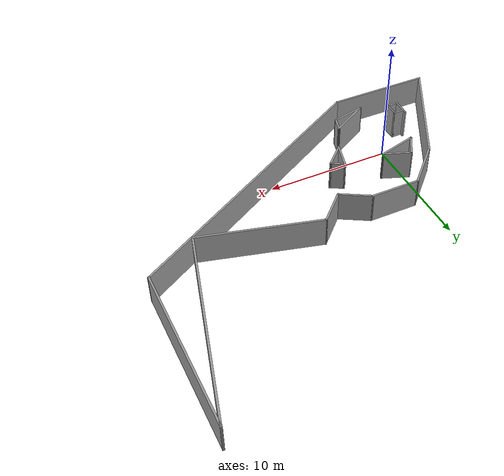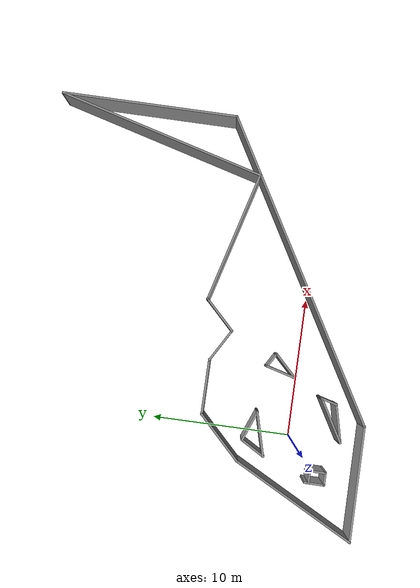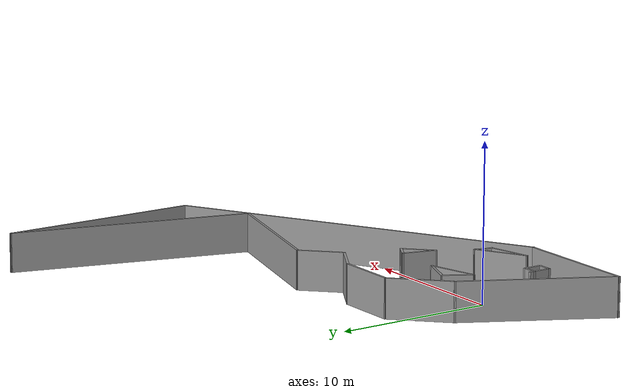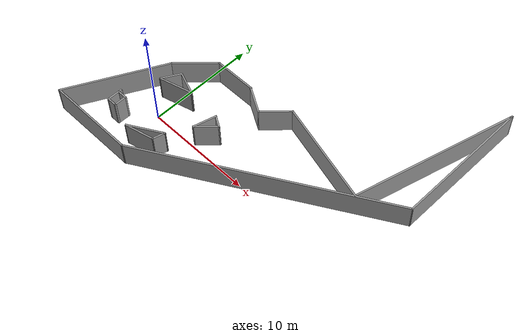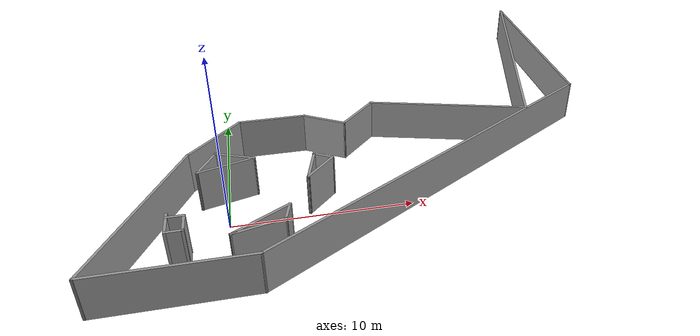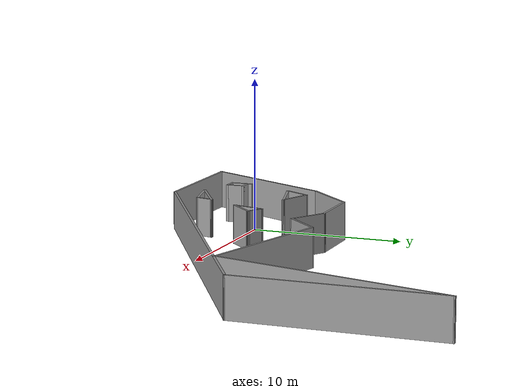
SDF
<?xml version='1.0'?>
<sdf version='1.7'>
  <model name='wall_world'>
    <pose>7.88795 7.2472 0 0 -0 0</pose>
    <link name='Wall_0'>
      <collision name='Wall_0_Collision'>
        <geometry>
          <box>
            <size>8.25 0.15 2.5</size>
          </box>
        </geometry>
        <pose>0 0 1.25 0 -0 0</pose>
      </collision>
      <visual name='Wall_0_Visual'>
        <pose>0 0 1.25 0 -0 0</pose>
        <geometry>
          <box>
            <size>8.25 0.15 2.5</size>
          </box>
        </geometry>
        <material>
          <script>
            <uri>file://media/materials/scripts/gazebo.material</uri>
            <name>Gazebo/Grey</name>
          </script>
          <ambient>1 1 1 1</ambient>
        </material>
        <meta>
          <layer>0</layer>
        </meta>
      </visual>
      <pose>-10.328 -12.2572 0 0 -0 0</pose>
    </link>
    <link name='Wall_1'>
      <collision name='Wall_1_Collision'>
        <geometry>
          <box>
            <size>24 0.15 2.5</size>
          </box>
        </geometry>
        <pose>0 0 1.25 0 -0 0</pose>
      </collision>
      <visual name='Wall_1_Visual'>
        <pose>0 0 1.25 0 -0 0</pose>
        <geometry>
          <box>
            <size>24 0.15 2.5</size>
          </box>
        </geometry>
        <material>
          <script>
            <uri>file://media/materials/scripts/gazebo.material</uri>
            <name>Gazebo/Grey</name>
          </script>
          <ambient>1 1 1 1</ambient>
        </material>
        <meta>
          <layer>0</layer>
        </meta>
      </visual>
      <pose>4.0494 -6.2947 0 0 -0 0.523599</pose>
    </link>
    <link name='Wall_11'>
      <collision name='Wall_11_Collision'>
        <geometry>
          <box>
            <size>2.25 0.15 2.5</size>
          </box>
        </geometry>
        <pose>0 0 1.25 0 -0 0</pose>
      </collision>
      <visual name='Wall_11_Visual'>
        <pose>0 0 1.25 0 -0 0</pose>
        <geometry>
          <box>
            <size>2.25 0.15 2.5</size>
          </box>
        </geometry>
        <material>
          <script>
            <uri>file://media/materials/scripts/gazebo.material</uri>
            <name>Gazebo/Grey</name>
          </script>
          <ambient>1 1 1 1</ambient>
        </material>
        <meta>
          <layer>0</layer>
        </meta>
      </visual>
      <pose>-2.81296 -6.19714 0 0 -0 -2.35619</pose>
    </link>
    <link name='Wall_12'>
      <collision name='Wall_12_Collision'>
        <geometry>
          <box>
            <size>2.25 0.15 2.5</size>
          </box>
        </geometry>
        <pose>0 0 1.25 0 -0 0</pose>
      </collision>
      <visual name='Wall_12_Visual'>
        <pose>0 0 1.25 0 -0 0</pose>
        <geometry>
          <box>
            <size>2.25 0.15 2.5</size>
          </box>
        </geometry>
        <material>
          <script>
            <uri>file://media/materials/scripts/gazebo.material</uri>
            <name>Gazebo/Grey</name>
          </script>
          <ambient>1 1 1 1</ambient>
        </material>
        <meta>
          <layer>0</layer>
        </meta>
      </visual>
      <pose>-3.28366 -5.92538 0 0 -0 1.309</pose>
    </link>
    <link name='Wall_13'>
      <collision name='Wall_13_Collision'>
        <geometry>
          <box>
            <size>1.23704 0.15 2.5</size>
          </box>
        </geometry>
        <pose>0 0 1.25 0 -0 0</pose>
      </collision>
      <visual name='Wall_13_Visual'>
        <pose>0 0 1.25 0 -0 0</pose>
        <geometry>
          <box>
            <size>1.23704 0.15 2.5</size>
          </box>
        </geometry>
        <material>
          <script>
            <uri>file://media/materials/scripts/gazebo.material</uri>
            <name>Gazebo/Grey</name>
          </script>
          <ambient>1 1 1 1</ambient>
        </material>
        <meta>
          <layer>0</layer>
        </meta>
      </visual>
      <pose>-2.5412 -5.18291 0 0 -0 -0.523599</pose>
    </link>
    <link name='Wall_15'>
      <collision name='Wall_15_Collision'>
        <geometry>
          <box>
            <size>1 0.15 2.5</size>
          </box>
        </geometry>
        <pose>0 0 1.25 0 -0 0</pose>
      </collision>
      <visual name='Wall_15_Visual'>
        <pose>0 0 1.25 0 -0 0</pose>
        <geometry>
          <box>
            <size>1 0.15 2.5</size>
          </box>
        </geometry>
        <material>
          <script>
            <uri>file://media/materials/scripts/gazebo.material</uri>
            <name>Gazebo/Grey</name>
          </script>
          <ambient>1 1 1 1</ambient>
        </material>
        <meta>
          <layer>0</layer>
        </meta>
      </visual>
      <pose>-10.2742 -8.86393 0 0 -0 0</pose>
    </link>
    <link name='Wall_16'>
      <collision name='Wall_16_Collision'>
        <geometry>
          <box>
            <size>1.25 0.15 2.5</size>
          </box>
        </geometry>
        <pose>0 0 1.25 0 -0 0</pose>
      </collision>
      <visual name='Wall_16_Visual'>
        <pose>0 0 1.25 0 -0 0</pose>
        <geometry>
          <box>
            <size>1.25 0.15 2.5</size>
          </box>
        </geometry>
        <material>
          <script>
            <uri>file://media/materials/scripts/gazebo.material</uri>
            <name>Gazebo/Grey</name>
          </script>
          <ambient>1 1 1 1</ambient>
        </material>
        <meta>
          <layer>0</layer>
        </meta>
      </visual>
      <pose>-9.84922 -9.41393 0 0 -0 -1.5708</pose>
    </link>
    <link name='Wall_17'>
      <collision name='Wall_17_Collision'>
        <geometry>
          <box>
            <size>1 0.15 2.5</size>
          </box>
        </geometry>
        <pose>0 0 1.25 0 -0 0</pose>
      </collision>
      <visual name='Wall_17_Visual'>
        <pose>0 0 1.25 0 -0 0</pose>
        <geometry>
          <box>
            <size>1 0.15 2.5</size>
          </box>
        </geometry>
        <material>
          <script>
            <uri>file://media/materials/scripts/gazebo.material</uri>
            <name>Gazebo/Grey</name>
          </script>
          <ambient>1 1 1 1</ambient>
        </material>
        <meta>
          <layer>0</layer>
        </meta>
      </visual>
      <pose>-10.2742 -9.96392 0 0 -0 3.14159</pose>
    </link>
    <link name='Wall_18'>
      <collision name='Wall_18_Collision'>
        <geometry>
          <box>
            <size>1.5 0.15 2.5</size>
          </box>
        </geometry>
        <pose>0 0 1.25 0 -0 0</pose>
      </collision>
      <visual name='Wall_18_Visual'>
        <pose>0 0 1.25 0 -0 0</pose>
        <geometry>
          <box>
            <size>1.5 0.15 2.5</size>
          </box>
        </geometry>
        <material>
          <script>
            <uri>file://media/materials/scripts/gazebo.material</uri>
            <name>Gazebo/Grey</name>
          </script>
          <ambient>1 1 1 1</ambient>
        </material>
        <meta>
          <layer>0</layer>
        </meta>
      </visual>
      <pose>-10.6992 -9.28893 0 0 -0 1.5708</pose>
    </link>
    <link name='Wall_2'>
      <collision name='Wall_2_Collision'>
        <geometry>
          <box>
            <size>12.75 0.15 2.5</size>
          </box>
        </geometry>
        <pose>0 0 1.25 0 -0 0</pose>
      </collision>
      <visual name='Wall_2_Visual'>
        <pose>0 0 1.25 0 -0 0</pose>
        <geometry>
          <box>
            <size>12.75 0.15 2.5</size>
          </box>
        </geometry>
        <material>
          <script>
            <uri>file://media/materials/scripts/gazebo.material</uri>
            <name>Gazebo/Grey</name>
          </script>
          <ambient>1 1 1 1</ambient>
        </material>
        <meta>
          <layer>0</layer>
        </meta>
      </visual>
      <pose>14.3768 5.9678 0 0 -0 1.5708</pose>
    </link>
    <link name='Wall_20'>
      <collision name='Wall_20_Collision'>
        <geometry>
          <box>
            <size>2 0.15 2.5</size>
          </box>
        </geometry>
        <pose>0 0 1.25 0 -0 0</pose>
      </collision>
      <visual name='Wall_20_Visual'>
        <pose>0 0 1.25 0 -0 0</pose>
        <geometry>
          <box>
            <size>2 0.15 2.5</size>
          </box>
        </geometry>
        <material>
          <script>
            <uri>file://media/materials/scripts/gazebo.material</uri>
            <name>Gazebo/Grey</name>
          </script>
          <ambient>1 1 1 1</ambient>
        </material>
        <meta>
          <layer>0</layer>
        </meta>
      </visual>
      <pose>-8.8386 -4.65672 0 0 -0 -2.0944</pose>
    </link>
    <link name='Wall_21'>
      <collision name='Wall_21_Collision'>
        <geometry>
          <box>
            <size>3.25 0.15 2.5</size>
          </box>
        </geometry>
        <pose>0 0 1.25 0 -0 0</pose>
      </collision>
      <visual name='Wall_21_Visual'>
        <pose>0 0 1.25 0 -0 0</pose>
        <geometry>
          <box>
            <size>3.25 0.15 2.5</size>
          </box>
        </geometry>
        <material>
          <script>
            <uri>file://media/materials/scripts/gazebo.material</uri>
            <name>Gazebo/Grey</name>
          </script>
          <ambient>1 1 1 1</ambient>
        </material>
        <meta>
          <layer>0</layer>
        </meta>
      </visual>
      <pose>-7.80392 -5.05662 0 0 -0 0.261799</pose>
    </link>
    <link name='Wall_22'>
      <collision name='Wall_22_Collision'>
        <geometry>
          <box>
            <size>2.36856 0.15 2.5</size>
          </box>
        </geometry>
        <pose>0 0 1.25 0 -0 0</pose>
      </collision>
      <visual name='Wall_22_Visual'>
        <pose>0 0 1.25 0 -0 0</pose>
        <geometry>
          <box>
            <size>2.36856 0.15 2.5</size>
          </box>
        </geometry>
        <material>
          <script>
            <uri>file://media/materials/scripts/gazebo.material</uri>
            <name>Gazebo/Grey</name>
          </script>
          <ambient>1 1 1 1</ambient>
        </material>
        <meta>
          <layer>0</layer>
        </meta>
      </visual>
      <pose>-7.34142 -4.25555 0 0 -0 2.77278</pose>
    </link>
    <link name='Wall_24'>
      <collision name='Wall_24_Collision'>
        <geometry>
          <box>
            <size>3.5 0.15 2.5</size>
          </box>
        </geometry>
        <pose>0 0 1.25 0 -0 0</pose>
      </collision>
      <visual name='Wall_24_Visual'>
        <pose>0 0 1.25 0 -0 0</pose>
        <geometry>
          <box>
            <size>3.5 0.15 2.5</size>
          </box>
        </geometry>
        <material>
          <script>
            <uri>file://media/materials/scripts/gazebo.material</uri>
            <name>Gazebo/Grey</name>
          </script>
          <ambient>1 1 1 1</ambient>
        </material>
        <meta>
          <layer>0</layer>
        </meta>
      </visual>
      <pose>-6.17125 -9.86682 0 0 -0 0.523599</pose>
    </link>
    <link name='Wall_25'>
      <collision name='Wall_25_Collision'>
        <geometry>
          <box>
            <size>1.25 0.15 2.5</size>
          </box>
        </geometry>
        <pose>0 0 1.25 0 -0 0</pose>
      </collision>
      <visual name='Wall_25_Visual'>
        <pose>0 0 1.25 0 -0 0</pose>
        <geometry>
          <box>
            <size>1.25 0.15 2.5</size>
          </box>
        </geometry>
        <material>
          <script>
            <uri>file://media/materials/scripts/gazebo.material</uri>
            <name>Gazebo/Grey</name>
          </script>
          <ambient>1 1 1 1</ambient>
        </material>
        <meta>
          <layer>0</layer>
        </meta>
      </visual>
      <pose>-4.86301 -9.56058 0 0 -0 -1.8326</pose>
    </link>
    <link name='Wall_26'>
      <collision name='Wall_26_Collision'>
        <geometry>
          <box>
            <size>2.83722 0.15 2.5</size>
          </box>
        </geometry>
        <pose>0 0 1.25 0 -0 0</pose>
      </collision>
      <visual name='Wall_26_Visual'>
        <pose>0 0 1.25 0 -0 0</pose>
        <geometry>
          <box>
            <size>2.83722 0.15 2.5</size>
          </box>
        </geometry>
        <material>
          <script>
            <uri>file://media/materials/scripts/gazebo.material</uri>
            <name>Gazebo/Grey</name>
          </script>
          <ambient>1 1 1 1</ambient>
        </material>
        <meta>
          <layer>0</layer>
        </meta>
      </visual>
      <pose>-6.3136 -10.3981 0 0 -0 -2.91165</pose>
    </link>
    <link name='Wall_3'>
      <collision name='Wall_3_Collision'>
        <geometry>
          <box>
            <size>15.5 0.15 2.5</size>
          </box>
        </geometry>
        <pose>0 0 1.25 0 -0 0</pose>
      </collision>
      <visual name='Wall_3_Visual'>
        <pose>0 0 1.25 0 -0 0</pose>
        <geometry>
          <box>
            <size>15.5 0.15 2.5</size>
          </box>
        </geometry>
        <material>
          <script>
            <uri>file://media/materials/scripts/gazebo.material</uri>
            <name>Gazebo/Grey</name>
          </script>
          <ambient>1 1 1 1</ambient>
        </material>
        <meta>
          <layer>0</layer>
        </meta>
      </visual>
      <pose>12.3903 4.85432 0 0 -0 -1.8326</pose>
    </link>
    <link name='Wall_4'>
      <collision name='Wall_4_Collision'>
        <geometry>
          <box>
            <size>9.75 0.15 2.5</size>
          </box>
        </geometry>
        <pose>0 0 1.25 0 -0 0</pose>
      </collision>
      <visual name='Wall_4_Visual'>
        <pose>0 0 1.25 0 -0 0</pose>
        <geometry>
          <box>
            <size>9.75 0.15 2.5</size>
          </box>
        </geometry>
        <material>
          <script>
            <uri>file://media/materials/scripts/gazebo.material</uri>
            <name>Gazebo/Grey</name>
          </script>
          <ambient>1 1 1 1</ambient>
        </material>
        <meta>
          <layer>0</layer>
        </meta>
      </visual>
      <pose>5.76744 -1.31683 0 0 -0 2.87979</pose>
    </link>
    <link name='Wall_5'>
      <collision name='Wall_5_Collision'>
        <geometry>
          <box>
            <size>3 0.15 2.5</size>
          </box>
        </geometry>
        <pose>0 0 1.25 0 -0 0</pose>
      </collision>
      <visual name='Wall_5_Visual'>
        <pose>0 0 1.25 0 -0 0</pose>
        <geometry>
          <box>
            <size>3 0.15 2.5</size>
          </box>
        </geometry>
        <material>
          <script>
            <uri>file://media/materials/scripts/gazebo.material</uri>
            <name>Gazebo/Grey</name>
          </script>
          <ambient>1 1 1 1</ambient>
        </material>
        <meta>
          <layer>0</layer>
        </meta>
      </visual>
      <pose>0.123366 -1.08213 0 0 -0 -2.35619</pose>
    </link>
    <link name='Wall_6'>
      <collision name='Wall_6_Collision'>
        <geometry>
          <box>
            <size>2.75 0.15 2.5</size>
          </box>
        </geometry>
        <pose>0 0 1.25 0 -0 0</pose>
      </collision>
      <visual name='Wall_6_Visual'>
        <pose>0 0 1.25 0 -0 0</pose>
        <geometry>
          <box>
            <size>2.75 0.15 2.5</size>
          </box>
        </geometry>
        <material>
          <script>
            <uri>file://media/materials/scripts/gazebo.material</uri>
            <name>Gazebo/Grey</name>
          </script>
          <ambient>1 1 1 1</ambient>
        </material>
        <meta>
          <layer>0</layer>
        </meta>
      </visual>
      <pose>-2.01009 -1.43975 0 0 -0 2.61799</pose>
    </link>
    <link name='Wall_7'>
      <collision name='Wall_7_Collision'>
        <geometry>
          <box>
            <size>4 0.15 2.5</size>
          </box>
        </geometry>
        <pose>0 0 1.25 0 -0 0</pose>
      </collision>
      <visual name='Wall_7_Visual'>
        <pose>0 0 1.25 0 -0 0</pose>
        <geometry>
          <box>
            <size>4 0.15 2.5</size>
          </box>
        </geometry>
        <material>
          <script>
            <uri>file://media/materials/scripts/gazebo.material</uri>
            <name>Gazebo/Grey</name>
          </script>
          <ambient>1 1 1 1</ambient>
        </material>
        <meta>
          <layer>0</layer>
        </meta>
      </visual>
      <pose>-5.06093 -0.789755 0 0 -0 3.14159</pose>
    </link>
    <link name='Wall_8'>
      <collision name='Wall_8_Collision'>
        <geometry>
          <box>
            <size>4.25 0.15 2.5</size>
          </box>
        </geometry>
        <pose>0 0 1.25 0 -0 0</pose>
      </collision>
      <visual name='Wall_8_Visual'>
        <pose>0 0 1.25 0 -0 0</pose>
        <geometry>
          <box>
            <size>4.25 0.15 2.5</size>
          </box>
        </geometry>
        <material>
          <script>
            <uri>file://media/materials/scripts/gazebo.material</uri>
            <name>Gazebo/Grey</name>
          </script>
          <ambient>1 1 1 1</ambient>
        </material>
        <meta>
          <layer>0</layer>
        </meta>
      </visual>
      <pose>-8.43549 -2.23932 0 0 -0 -2.35619</pose>
    </link>
    <link name='Wall_9'>
      <collision name='Wall_9_Collision'>
        <geometry>
          <box>
            <size>9.82481 0.15 2.5</size>
          </box>
        </geometry>
        <pose>0 0 1.25 0 -0 0</pose>
      </collision>
      <visual name='Wall_9_Visual'>
        <pose>0 0 1.25 0 -0 0</pose>
        <geometry>
          <box>
            <size>9.82481 0.15 2.5</size>
          </box>
        </geometry>
        <material>
          <script>
            <uri>file://media/materials/scripts/gazebo.material</uri>
            <name>Gazebo/Grey</name>
          </script>
          <ambient>1 1 1 1</ambient>
        </material>
        <meta>
          <layer>0</layer>
        </meta>
      </visual>
      <pose>-12.1315 -7.97305 0 0 -0 -2.05374</pose>
    </link>
    <static>1</static>
  </model>
</sdf>
